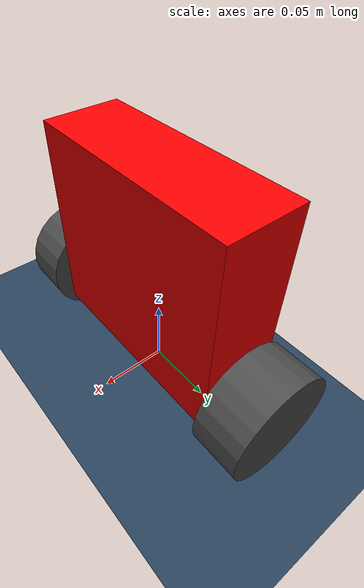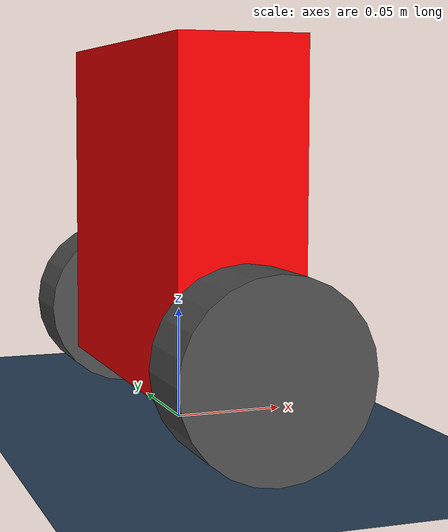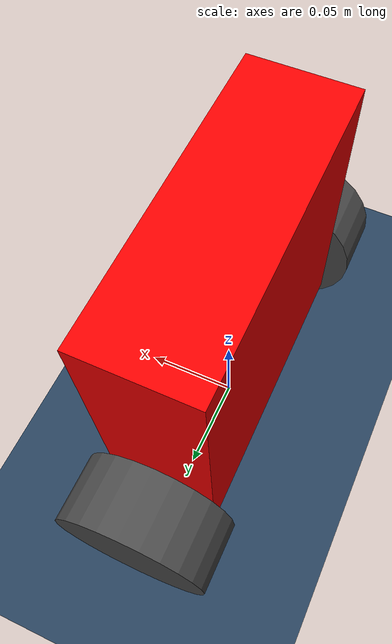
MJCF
<mujoco model="balancing robot">
    <option integrator="RK4" timestep="0.001"/>

    <visual>
        <global offheight="2160" offwidth="3840"/>
        <quality offsamples="8"/>
    </visual>

    <asset>
        <texture name="grid" type="2d" builtin="checker" rgb1=".1 .2 .3"
            rgb2=".2 .3 .4" width="300" height="300"/>
        <material name="grid" texture="grid" texrepeat="8 8" reflectance=".2"/>

        <texture name="wheel" type="2d" builtin="checker" rgb1=".1 .1 .1"
            rgb2=".5 .5 .5" width="300" height="300"/>
        <material name="wheel" texture="wheel" texrepeat="2 2" reflectance=".2"/>
    </asset>

    <worldbody>
        <geom size="1 1 .01" type="plane" material="grid"/>
        <light pos="0 0 1"/>
        <camera name="closeup" pos=".3 -.4 .25" xyaxes="1 .8 0 0 1 2"/>
        <body name="top" pos="0 0 0">
            <joint name="top" type="free"/>
            <site name="IMU" pos="0 0 .04"/>
            <geom name="body" type="box" size=".0275 .080 .075" pos="0 0 .095" mass=".46" rgba="1 0 0 1" contype="2" conaffinity="2"/>
            <body name="right wheel" pos="0 0 .02">
                <joint name="right wheel" type="hinge" axis="0 1 0" pos="0 0 .02" damping="0.0001"/>
                <geom name="right wheel" type="cylinder" pos="0 -0.1 .02" size="0.04 .0175" mass=".04" zaxis="0 1 0" material="wheel"/>
            </body>
            <body name="left wheel" pos="0 0 .02">
                <joint name="left wheel" type="hinge" axis="0 1 0" pos="0 0 .02" damping="0.0001"/>
                <geom name="left wheel" type="cylinder" pos="0 0.1 .02" size="0.04 .0175" mass=".04" zaxis="0 1 0" material="wheel"/>
            </body>
        </body>
    </worldbody>

    <actuator>
        <motor name="motor right" joint="right wheel" gear="1"/>
        <motor name="motor left" joint="left wheel" gear="1"/>
    </actuator>

    <sensor>
        <accelerometer name="accelerometer" site="IMU"/>
        <framezaxis name="top z axis" objtype="body" objname="top"/>
        <frameyaxis name="top y axis" objtype="body" objname="top"/>
    </sensor>

</mujoco>
